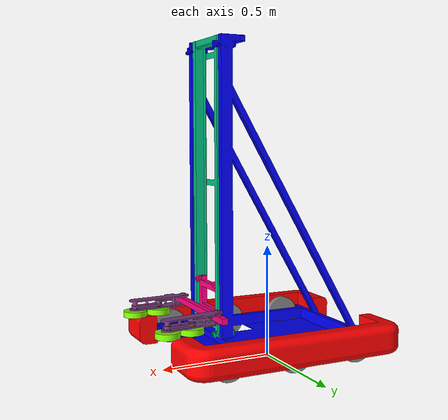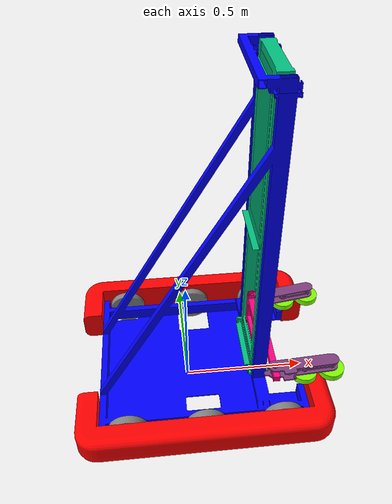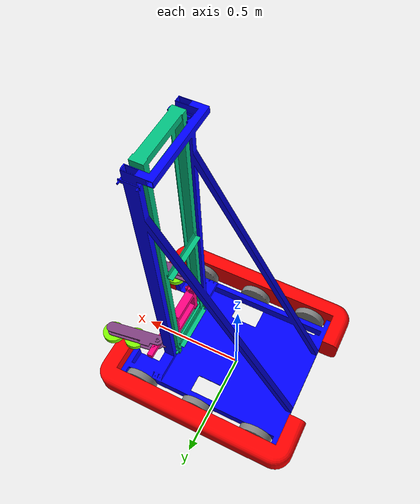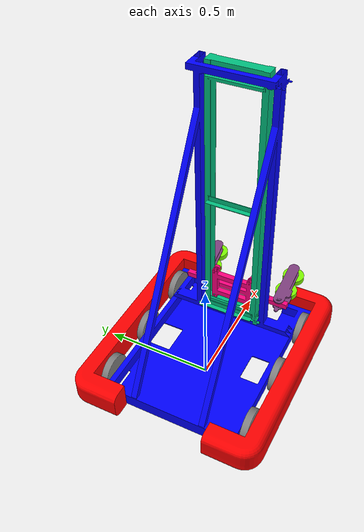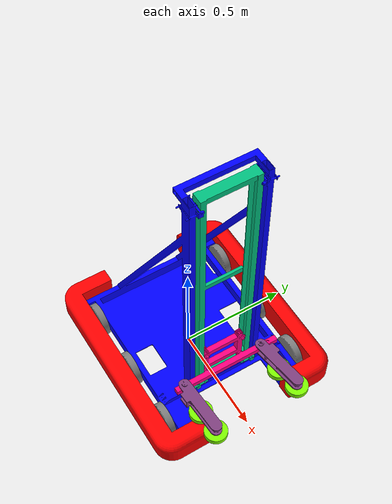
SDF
<?xml version="1.0" encoding="utf-8"?>
<sdf version="1.5">
  <model name="2018Robot">
    <pose>0 0 0.07612 0 0 0</pose>
    <plugin name="clock" filename="libclock.so">
      <topic>/gazebo/frc/time</topic>
    </plugin>
    <link name="Body">
      <gravity>1</gravity>
      <self_collide>0</self_collide>
      <pose>0.0514622547640746 -7.03169526643412E-05 0.00139859677991154 1.571 0 1.571</pose>
      <must_be_base_link>1</must_be_base_link>
      <velocity_decay>
        <linear>0</linear>
        <angular>0</angular>
      </velocity_decay>
      <inertial>
        <mass>35.9506776432133</mass>
        <pose>-0.00759376246486691 0.05 0.0 0 0 0</pose>
        <inertia>
          <ixx>1.40287896</ixx>
          <ixy>0.06862777</ixy>
          <ixz>0.02446668</ixz>
          <iyy>0.18210418</iyy>
          <iyz>0.24909937</iyz>
          <izz>1.34266984</izz>
        </inertia>
      </inertial>
      <collision name="Body_collision">
        <pose>0 0 0 0 0 0</pose>
        <geometry>
          <mesh>
            <scale>1 1 1</scale>
            <uri>model://2018Robot/meshes/Body_col.STL</uri>
          </mesh>
        </geometry>
        <surface>
          <contact>
            <ode />
          </contact>
          <friction>
            <ode>
              <mu>1</mu>
              <mu2>1</mu2>
            </ode>
          </friction>
        </surface>
      </collision>
      <visual name="Body_visual">
        <pose>0 0 0 0 0 0</pose>
        <material>
          <ambient>0 0 1 1</ambient>
          <diffuse>0 0 1 1</diffuse>
        </material>
        <geometry>
          <mesh>
            <scale>1 1 1</scale>
            <uri>model://2018Robot/meshes/Body.STL</uri>
          </mesh>
        </geometry>
      </visual>
    </link>
    <link name="LFWheel">
      <gravity>1</gravity>
      <self_collide>0</self_collide>
      <pose>0.345346896246474 0.328549000000001 0.026924 1.5707963267949 0 1.5707963267949</pose>
      <must_be_base_link>0</must_be_base_link>
      <velocity_decay>
        <linear>0</linear>
        <angular>0</angular>
      </velocity_decay>
      <inertial>
        <mass>0.593273105209116</mass>
        <pose>0 0 0 0 0 0</pose>
        <inertia>
          <ixx>0</ixx>
          <ixy>0</ixy>
          <ixz>0</ixz>
          <iyy>0</iyy>
          <iyz>0</iyz>
          <izz>0</izz>
        </inertia>
      </inertial>
      <collision name="LFWheel_collision">
        <pose>-0.328619316952665 -0.0255254032200884 -0.2938846414824 0 0 0</pose>
        <geometry>
          <mesh>
            <scale>1 1 1</scale>
            <uri>model://2018Robot/meshes/LFWheel_col.STL</uri>
          </mesh>
        </geometry>
        <surface>
          <contact>
            <ode>
              <kp>1000000</kp>
              <kd>10</kd>
            </ode>
          </contact>
          <friction>
            <ode>
              <mu>1</mu>
              <mu2>1</mu2>
            </ode>
          </friction>
        </surface>
      </collision>
      <visual name="LFWheel_visual">
        <pose>-0.328619316952665 -0.0255254032200884 -0.2938846414824 0 0 0</pose>
        <material>
          <ambient>0.501960784313725 0.501960784313725 0.501960784313725 1</ambient>
          <diffuse>0.501960784313725 0.501960784313725 0.501960784313725 1</diffuse>
        </material>
        <geometry>
          <mesh>
            <scale>1 1 1</scale>
            <uri>model://2018Robot/meshes/LFWheel.STL</uri>
          </mesh>
        </geometry>
      </visual>
    </link>
    <joint name="Body-LFWheel" type="revolute">
      <parent>Body</parent>
      <child>LFWheel</child>
      <pose>0 2.77555756156289E-17 -5.55111512312578E-17 0 0 0</pose>
      <axis>
        <xyz>1 0 0</xyz>
        <dynamics>
          <damping>1</damping>
          <friction>1</friction>
        </dynamics>
        <limit>
          <effort>50</effort>
        </limit>
      </axis>
    </joint>
    <link name="LCWheel">
      <gravity>1</gravity>
      <self_collide>0</self_collide>
      <pose>0.0468968962464743 0.328549000000001 0.0220472 1.5707963267949 0 1.5707963267949</pose>
      <must_be_base_link>0</must_be_base_link>
      <velocity_decay>
        <linear>0</linear>
        <angular>0</angular>
      </velocity_decay>
      <inertial>
        <mass>0.593273105209116</mass>
        <pose>0 0 0 0 0 0</pose>
        <inertia>
          <ixx>0</ixx>
          <ixy>0</ixy>
          <ixz>0</ixz>
          <iyy>0</iyy>
          <iyz>0</iyz>
          <izz>0</izz>
        </inertia>
      </inertial>
      <collision name="LCWheel_collision">
        <pose>-0.328619316952665 -0.0206486032200884 0.00456535851760044 0 0 0</pose>
        <geometry>
          <mesh>
            <scale>1 1 1</scale>
            <uri>model://2018Robot/meshes/LCWheel_col.STL</uri>
          </mesh>
        </geometry>
        <surface>
          <contact>
            <ode>
              <kp>1000000</kp>
              <kd>10</kd>
            </ode>
          </contact>
          <friction>
            <ode>
              <mu>1</mu>
              <mu2>1</mu2>
            </ode>
          </friction>
        </surface>
      </collision>
      <visual name="LCWheel_visual">
        <pose>-0.328619316952665 -0.0206486032200884 0.00456535851760044 0 0 0</pose>
        <material>
          <ambient>0.501960784313725 0.501960784313725 0.501960784313725 1</ambient>
          <diffuse>0.501960784313725 0.501960784313725 0.501960784313725 1</diffuse>
        </material>
        <geometry>
          <mesh>
            <scale>1 1 1</scale>
            <uri>model://2018Robot/meshes/LCWheel.STL</uri>
          </mesh>
        </geometry>
      </visual>
    </link>
    <joint name="Body-LCWheel" type="revolute">
      <parent>Body</parent>
      <child>LCWheel</child>
      <pose>0 6.93889390390723E-18 -3.46944695195361E-18 0 0 0</pose>
      <axis>
        <xyz>1 0 0</xyz>
        <dynamics>
          <damping>1</damping>
          <friction>1</friction>
        </dynamics>
        <limit>
          <effort>50</effort>
        </limit>
      </axis>
    </joint>
    <link name="LBWheel">
      <gravity>1</gravity>
      <self_collide>0</self_collide>
      <pose>-0.251553103753526 0.328549000000001 0.0269239999999999 1.5707963267949 0 1.5707963267949</pose>
      <must_be_base_link>0</must_be_base_link>
      <velocity_decay>
        <linear>0</linear>
        <angular>0</angular>
      </velocity_decay>
      <inertial>
        <mass>0.593273105209116</mass>
        <pose>0 0 0 0 0 0</pose>
        <inertia>
          <ixx>0</ixx>
          <ixy>0</ixy>
          <ixz>0</ixz>
          <iyy>0</iyy>
          <iyz>0</iyz>
          <izz>0</izz>
        </inertia>
      </inertial>
      <collision name="LBWheel_collision">
        <pose>-0.328619316952665 -0.0255254032200885 0.3030153585176 0 0 0</pose>
        <geometry>
          <mesh>
            <scale>1 1 1</scale>
            <uri>model://2018Robot/meshes/LBWheel_col.STL</uri>
          </mesh>
        </geometry>
        <surface>
          <contact>
            <ode>
              <kp>1000000</kp>
              <kd>10</kd>
            </ode>
          </contact>
          <friction>
            <ode>
              <mu>1</mu>
              <mu2>1</mu2>
            </ode>
          </friction>
        </surface>
      </collision>
      <visual name="LBWheel_visual">
        <pose>-0.328619316952665 -0.0255254032200885 0.3030153585176 0 0 0</pose>
        <material>
          <ambient>0.501960784313725 0.501960784313725 0.501960784313725 1</ambient>
          <diffuse>0.501960784313725 0.501960784313725 0.501960784313725 1</diffuse>
        </material>
        <geometry>
          <mesh>
            <scale>1 1 1</scale>
            <uri>model://2018Robot/meshes/LBWheel.STL</uri>
          </mesh>
        </geometry>
      </visual>
    </link>
    <joint name="Body-LBWheel" type="revolute">
      <parent>Body</parent>
      <child>LBWheel</child>
      <pose>0 -1.73472347597681E-17 5.55111512312578E-17 0 0 0</pose>
      <axis>
        <xyz>1 0 0</xyz>
        <dynamics>
          <damping>1</damping>
          <friction>1</friction>
        </dynamics>
        <limit>
          <effort>50</effort>
        </limit>
      </axis>
    </joint>
    <link name="RFWheel">
      <gravity>1</gravity>
      <self_collide>0</self_collide>
      <pose>0.347862527162241 -0.328548999999999 0.0280925888899449 1.5707963267949 0 1.5707963267949</pose>
      <must_be_base_link>0</must_be_base_link>
      <velocity_decay>
        <linear>0</linear>
        <angular>0</angular>
      </velocity_decay>
      <inertial>
        <mass>0.593273105209116</mass>
        <pose>0 0 0 0 0 0</pose>
        <inertia>
          <ixx>0</ixx>
          <ixy>0</ixy>
          <ixz>0</ixz>
          <iyy>0</iyy>
          <iyz>0</iyz>
          <izz>0</izz>
        </inertia>
      </inertial>
      <collision name="RFWheel_collision">
        <pose>0.328478683047335 -0.0266939921100333 -0.296400272398166 0 0 0</pose>
        <geometry>
          <mesh>
            <scale>1 1 1</scale>
            <uri>model://2018Robot/meshes/RFWheel_col.STL</uri>
          </mesh>
        </geometry>
        <surface>
          <contact>
            <ode>
              <kp>1000000</kp>
              <kd>10</kd>
            </ode>
          </contact>
          <friction>
            <ode>
              <mu>1</mu>
              <mu2>1</mu2>
            </ode>
          </friction>
        </surface>
      </collision>
      <visual name="RFWheel_visual">
        <pose>0.328478683047335 -0.0266939921100333 -0.296400272398166 0 0 0</pose>
        <material>
          <ambient>0.501960784313725 0.501960784313725 0.501960784313725 1</ambient>
          <diffuse>0.501960784313725 0.501960784313725 0.501960784313725 1</diffuse>
        </material>
        <geometry>
          <mesh>
            <scale>1 1 1</scale>
            <uri>model://2018Robot/meshes/RFWheel.STL</uri>
          </mesh>
        </geometry>
      </visual>
    </link>
    <joint name="Body-RFWheel" type="revolute">
      <parent>Body</parent>
      <child>RFWheel</child>
      <pose>0 -6.93889390390723E-18 0 0 0 0</pose>
      <axis>
        <xyz>1 0 0</xyz>
        <dynamics>
          <damping>1</damping>
          <friction>1</friction>
        </dynamics>
        <limit>
          <effort>50</effort>
        </limit>
      </axis>
    </joint>
    <link name="RCWheel">
      <gravity>1</gravity>
      <self_collide>0</self_collide>
      <pose>0.0494125271622406 -0.328548999999999 0.0232157888899448 1.5707963267949 0 1.5707963267949</pose>
      <must_be_base_link>0</must_be_base_link>
      <velocity_decay>
        <linear>0</linear>
        <angular>0</angular>
      </velocity_decay>
      <inertial>
        <mass>0.593273105209116</mass>
        <pose>0 0 0 0 0 0</pose>
        <inertia>
          <ixx>0</ixx>
          <ixy>0</ixy>
          <ixz>0</ixz>
          <iyy>0</iyy>
          <iyz>0</iyz>
          <izz>0</izz>
        </inertia>
      </inertial>
      <collision name="RCWheel_collision">
        <pose>0.328478683047335 -0.0218171921100333 0.00204972760183393 0 0 0</pose>
        <geometry>
          <mesh>
            <scale>1 1 1</scale>
            <uri>model://2018Robot/meshes/RCWheel_col.STL</uri>
          </mesh>
        </geometry>
        <surface>
          <contact>
            <ode>
              <kp>1000000</kp>
              <kd>10</kd>
            </ode>
          </contact>
          <friction>
            <ode>
              <mu>1</mu>
              <mu2>1</mu2>
            </ode>
          </friction>
        </surface>
      </collision>
      <visual name="RCWheel_visual">
        <pose>0.328478683047335 -0.0218171921100333 0.00204972760183393 0 0 0</pose>
        <material>
          <ambient>0.501960784313725 0.501960784313725 0.501960784313725 1</ambient>
          <diffuse>0.501960784313725 0.501960784313725 0.501960784313725 1</diffuse>
        </material>
        <geometry>
          <mesh>
            <scale>1 1 1</scale>
            <uri>model://2018Robot/meshes/RCWheel.STL</uri>
          </mesh>
        </geometry>
      </visual>
    </link>
    <joint name="Body-RCWheel" type="revolute">
      <parent>Body</parent>
      <child>RCWheel</child>
      <pose>0 6.93889390390723E-18 -3.46944695195361E-18 0 0 0</pose>
      <axis>
        <xyz>1 0 0</xyz>
        <dynamics>
          <damping>1</damping>
          <friction>1</friction>
        </dynamics>
        <limit>
          <effort>50</effort>
        </limit>
      </axis>
    </joint>
    <link name="RBWheel">
      <gravity>1</gravity>
      <self_collide>0</self_collide>
      <pose>-0.249037472837759 -0.328548999999999 0.0280925888899448 1.5707963267949 0 1.5707963267949</pose>
      <must_be_base_link>0</must_be_base_link>
      <velocity_decay>
        <linear>0</linear>
        <angular>0</angular>
      </velocity_decay>
      <inertial>
        <mass>0.593273105209116</mass>
        <pose>0 0 0 0 0 0</pose>
        <inertia>
          <ixx>0</ixx>
          <ixy>0</ixy>
          <ixz>0</ixz>
          <iyy>0</iyy>
          <iyz>0</iyz>
          <izz>0</izz>
        </inertia>
      </inertial>
      <collision name="RBWheel_collision">
        <pose>0.328478683047335 -0.0266939921100333 0.300499727601834 0 0 0</pose>
        <geometry>
          <mesh>
            <scale>1 1 1</scale>
            <uri>model://2018Robot/meshes/RBWheel_col.STL</uri>
          </mesh>
        </geometry>
        <surface>
          <contact>
            <ode>
              <kp>1e7</kp>
              <kd>2</kd>
            </ode>
          </contact>
          <friction>
            <ode>
              <mu>1</mu>
              <mu2>1</mu2>
            </ode>
          </friction>
        </surface>
      </collision>
      <visual name="RBWheel_visual">
        <pose>0.328478683047335 -0.0266939921100333 0.300499727601834 0 0 0</pose>
        <material>
          <ambient>0.501960784313725 0.501960784313725 0.501960784313725 1</ambient>
          <diffuse>0.501960784313725 0.501960784313725 0.501960784313725 1</diffuse>
        </material>
        <geometry>
          <mesh>
            <scale>1 1 1</scale>
            <uri>model://2018Robot/meshes/RBWheel.STL</uri>
          </mesh>
        </geometry>
      </visual>
    </link>
    <joint name="Body-RBWheel" type="revolute">
      <parent>Body</parent>
      <child>RBWheel</child>
      <pose>0 0 -5.55111512312578E-17 0 0 0</pose>
      <axis>
        <xyz>1 0 0</xyz>
        <dynamics>
          <damping>1</damping>
          <friction>1</friction>
        </dynamics>
        <limit>
          <effort>50</effort>
        </limit>
      </axis>
    </joint>
    <link name="Elevator">
      <gravity>1</gravity>
      <self_collide>0</self_collide>
      <pose>0.273084449678101 -0.000136538670951718 0.682521554774598 1.5707963267949 0 1.5707963267949</pose>
      <must_be_base_link>0</must_be_base_link>
      <velocity_decay>
        <linear>0</linear>
        <angular>0</angular>
      </velocity_decay>
      <inertial>
        <mass>1.0105647270352</mass>
        <pose>0 0 0 0 0 0</pose>
        <inertia>
          <ixx>0.312365172579047</ixx>
          <ixy>4.29981822034921E-17</ixy>
          <ixz>4.34846172927141E-07</ixz>
          <iyy>0.0310790228334828</iyy>
          <iyz>5.94465968109575E-05</iyz>
          <izz>0.342860898116179</izz>
        </inertia>
      </inertial>
      <collision name="Elevator_collision">
        <pose>6.62217182873273E-05 -0.681122957994686 -0.221622194914027 0 0 0</pose>
        <geometry>
          <mesh>
            <scale>1 1 1</scale>
            <uri>model://2018Robot/meshes/Elevator_col.STL</uri>
          </mesh>
        </geometry>
        <surface>
          <contact>
            <ode />
          </contact>
          <friction>
            <ode>
              <mu>1</mu>
              <mu2>1</mu2>
            </ode>
          </friction>
        </surface>
      </collision>
      <visual name="Elevator_visual">
        <pose>6.62217182873273E-05 -0.681122957994686 -0.221622194914027 0 0 0</pose>
        <material>
          <ambient>0 0.752941176470588 0.501960784313725 1</ambient>
          <diffuse>0 0.752941176470588 0.501960784313725 1</diffuse>
        </material>
        <geometry>
          <mesh>
            <scale>1 1 1</scale>
            <uri>model://2018Robot/meshes/Elevator.STL</uri>
          </mesh>
        </geometry>
      </visual>
    </link>
    <joint name="Body-Elevator" type="prismatic">
      <parent>Body</parent>
      <child>Elevator</child>
      <pose>0.146685 5.55111512312578E-16 0.0284431309088501 0 0 0</pose>
      <axis>
        <xyz>0 1 0</xyz>
        <dynamics>
          <damping>1</damping>
          <friction>0.5</friction>
        </dynamics>
        <limit>
          <upper>1</upper>
          <lower>0</lower>
          <effort>200</effort>
        </limit>
      </axis>
    </joint>
    <link name="Carriage">
      <gravity>1</gravity>
      <self_collide>0</self_collide>
      <pose>0.298251064263279 -0.000525442663769609 0.196156834417803 1.5707963267949 0 1.5707963267949</pose>
      <must_be_base_link>0</must_be_base_link>
      <velocity_decay>
        <linear>0</linear>
        <angular>0</angular>
      </velocity_decay>
      <inertial>
        <mass>0.756134294882802</mass>
        <pose>0 0 0 0 0 0</pose>
        <inertia>
          <ixx>0.00151360538669035</ixx>
          <ixy>7.90152677191644E-06</ixy>
          <ixz>7.73068924193737E-06</ixz>
          <iyy>0.00224964055846027</iyy>
          <iyz>0.000406864253013999</iyz>
          <izz>0.0029310055946332</izz>
        </inertia>
      </inertial>
      <collision name="Carriage_collision">
        <pose>0.000455125711105213 -0.194758237637891 -0.246788809499204 0 0 0</pose>
        <geometry>
          <mesh>
            <scale>1 1 1</scale>
            <uri>model://2018Robot/meshes/Carriage_col.STL</uri>
          </mesh>
        </geometry>
        <surface>
          <contact>
            <ode />
          </contact>
          <friction>
            <ode>
              <mu>1</mu>
              <mu2>1</mu2>
            </ode>
          </friction>
        </surface>
      </collision>
      <visual name="Carriage_visual">
        <pose>0.000455125711105213 -0.194758237637891 -0.246788809499204 0 0 0</pose>
        <material>
          <ambient>1 0 0.501960784313725 1</ambient>
          <diffuse>1 0 0.501960784313725 1</diffuse>
        </material>
        <geometry>
          <mesh>
            <scale>1 1 1</scale>
            <uri>model://2018Robot/meshes/Carriage.STL</uri>
          </mesh>
        </geometry>
      </visual>
      <sensor name="CarriageCamera" type="camera">
        <visualize>0</visualize>
        <always_on>1</always_on>
        <update_rate>30</update_rate>
        <pose>0.000388903992818958 0.0712680215809203 -0.00942348367632703 4.71238898038469 4.71238898038469 0</pose>
        <camera name="Carriagecamera">
          <horizontal_fov>1.5707963267949</horizontal_fov>
          <image>
            <width>320</width>
            <height>240</height>
          </image>
          <clip>
            <near>0.1</near>
            <far>100</far>
          </clip>
         <save enabled="true">
              <path>/tmp/driver-camera</path>
          </save>
        </camera>
      </sensor>
    </link>
    <joint name="Elevator-Carriage" type="prismatic">
      <parent>Elevator</parent>
      <child>Carriage</child>
      <pose>0.102623903992818 0.0204680529107767 0.0032765163236731 0 0 0</pose>
      <axis>
        <xyz>0 1 0</xyz>
        <dynamics>
          <damping>4</damping>
          <friction>0.5</friction>
        </dynamics>
        <limit>
          <upper>1.0</upper>
          <lower>0</lower>
          <effort>200</effort>
        </limit>
      </axis>
    </joint>

    <link name="Bumpers">
      <gravity>1</gravity>
      <self_collide>0</self_collide>
      <pose>0.0514622547640746 -7.03169526643412E-05 0.00139859677991154 1.571 0 1.571</pose>
      <must_be_base_link>0</must_be_base_link>
      <velocity_decay>
        <linear>0</linear>
        <angular>0</angular>
      </velocity_decay>
      <inertial>
        <mass>0.398486040545588</mass>
        <pose>3.51584763543176E-05 0.04904129851018 -0.00456535851758919 0 0 0</pose>
        <inertia>
          <ixx>0.01</ixx>
          <ixy>1.03639166087484E-14</ixy>
          <ixz>2.06E-06</ixz>
          <iyy>0.05</iyy>
          <iyz>4.06737867734918E-19</iyz>
          <izz>0.05</izz>
        </inertia>
      </inertial>
      <collision name="Bumpers_collision">
        <pose>0 0 0 0 0 0</pose>
        <geometry>
          <mesh>
            <scale>1 1 1</scale>
            <uri>model://2018Robot/meshes/Bumpers_col.STL</uri>
          </mesh>
        </geometry>
        <surface>
          <contact>
            <ode>
              <kp>1e7</kp>
              <kd>2</kd>
            </ode>
          </contact>
          <friction>
            <ode>
              <mu>1</mu>
              <mu2>1</mu2>
            </ode>
          </friction>
        </surface>
      </collision>
      <visual name="Bumpers_visual">
        <pose>0 0 0 0 0 0</pose>
        <material>
          <ambient>1 0 0 1</ambient>
          <diffuse>1 0 0 1</diffuse>
        </material>
        <geometry>
          <mesh>
            <scale>1 1 1</scale>
            <uri>model://2018Robot/meshes/Bumpers.STL</uri>
          </mesh>
        </geometry>
      </visual>
    </link>
    <joint name="Body-Bumpers" type="fixed">
      <parent>Body</parent>
      <child>Bumpers</child>
      <pose>0.146618778281713 0.04904129851018 0.250065325822877 0 0 0</pose>
      <axis>
        <xyz>0 1 0</xyz>
        <dynamics>
          <damping>0</damping>
          <friction>0</friction>
        </dynamics>
        <limit>
          <upper>0.001</upper>
          <lower>0</lower>
          <effort>1</effort>
        </limit>
      </axis>
    </joint>

    <link name="LeftArm">
      <gravity>1</gravity>
      <self_collide>0</self_collide>
      <pose>0.444244044788425 0.193535097652683 0.170457192189038 1.5707963267949 0 1.8707963267949</pose>
      <must_be_base_link>0</must_be_base_link>
      <velocity_decay>
        <linear>0</linear>
        <angular>0</angular>
      </velocity_decay>
      <inertial>
        <mass>0.334657514646386</mass>
        <pose>0 0 0 0 0 0</pose>
        <inertia>
          <ixx>0.00957838063662871</ixx>
          <ixy>4.76821168392472E-06</ixy>
          <ixz>0.00135979945601941</ixz>
          <iyy>0.00894154490020228</iyy>
          <iyz>1.85432303193578E-05</iyz>
          <izz>0.00111931238029883</izz>
        </inertia>
      </inertial>
      <collision name="LeftArm_collision">
        <pose>-0.193605414605347 -0.169058595409126 -0.392781790024351 0 0 0</pose>
        <geometry>
          <mesh>
            <scale>1 1 1</scale>
            <uri>model://2018Robot/meshes/LeftArm_col.STL</uri>
          </mesh>
        </geometry>
        <surface>
          <contact>
            <ode />
          </contact>
          <friction>
            <ode>
              <mu>0</mu>
              <mu2>0</mu2>
            </ode>
          </friction>
        </surface>
      </collision>
      <visual name="LeftArm_visual">
        <pose>-0.193605414605347 -0.169058595409126 -0.392781790024351 0 0 0</pose>
        <material>
          <ambient>0.501960784313725 0.250980392156863 0.501960784313725 1</ambient>
          <diffuse>0.501960784313725 0.250980392156863 0.501960784313725 1</diffuse>
        </material>
        <geometry>
          <mesh>
            <scale>1 1 1</scale>
            <uri>model://2018Robot/meshes/LeftArm.STL</uri>
          </mesh>
        </geometry>
      </visual>
    </link>
    <joint name="Carriage-LeftArm" type="revolute">
      <parent>Carriage</parent>
      <child>LeftArm</child>
      <pose>0.0162489078418779 -3.33066907387547E-16 -0.119703964201474 0 6.93889390390727E-18 1.8707963267949</pose>
      <axis>
        <xyz>1 2.15105711021124E-16 0</xyz>
        <dynamics>
          <damping>0</damping>
          <friction>0</friction>
        </dynamics>
        <limit>
          <upper>0.25</upper>
          <lower>-0.15</lower>
          <effort>100</effort>
        </limit>
      </axis>
    </joint>
    <link name="RightArm">
      <gravity>1</gravity>
      <self_collide>0</self_collide>
      <pose>0.442365722232764 -0.207334682561951 0.171127528598477 1.5707963267949 0 1.5707963267949</pose>
      <must_be_base_link>0</must_be_base_link>
      <velocity_decay>
        <linear>0</linear>
        <angular>0</angular>
      </velocity_decay>
      <inertial>
        <mass>0.349562793971358</mass>
        <pose>0 0 0 0 0 0</pose>
        <inertia>
          <ixx>0.00957838063662871</ixx>
          <ixy>4.76821168392472E-06</ixy>
          <ixz>0.00135979945601941</ixz>
          <iyy>0.00894154490020228</iyy>
          <iyz>1.85432303193578E-05</iyz>
          <izz>0.00111931238029883</izz>
        </inertia>
      </inertial>
      <collision name="RightArm_collision">
        <pose>0.207264365609286 -0.169728931818565 -0.39090346746869 0 0 0</pose>
        <geometry>
          <mesh>
            <scale>1 1 1</scale>
            <uri>model://2018Robot/meshes/RightArm_col.STL</uri>
          </mesh>
        </geometry>
        <surface>
          <contact>
            <ode />
          </contact>
          <friction>
            <ode>
              <mu>0</mu>
              <mu2>0</mu2>
            </ode>
          </friction>
        </surface>
      </collision>
      <visual name="RightArm_visual">
        <pose>0.207264365609286 -0.169728931818565 -0.39090346746869 0 0 0</pose>
        <material>
          <ambient>0.501960784313725 0.250980392156863 0.501960784313725 1</ambient>
          <diffuse>0.501960784313725 0.250980392156863 0.501960784313725 1</diffuse>
        </material>
        <geometry>
          <mesh>
            <scale>1 1 1</scale>
            <uri>model://2018Robot/meshes/RightArm.STL</uri>
          </mesh>
        </geometry>
      </visual>
    </link>
    <joint name="Carriage-RightArm" type="revolute">
      <parent>Carriage</parent>
      <child>RightArm</child>
      <pose>-0.0045213119434887 -2.77555756156289E-17 -0.117825641645813 0 6.28318530717959 4.71238898038469</pose>
      <axis>
        <xyz>1 2.15105711021124E-16 6.93889390390727E-18</xyz>
        <dynamics>
          <damping>0</damping>
          <friction>0</friction>
        </dynamics>
        <limit>
          <upper>0.3</upper>
          <lower>-0.1</lower>
          <effort>100</effort>
        </limit>
      </axis>
    </joint>
    <link name="L1Wheel">
      <gravity>1</gravity>
      <self_collide>0</self_collide>
      <pose>0.443715398660799 0.191782788533125 0.134389049247626 1.5707963267949 0 1.5707963267949</pose>
      <must_be_base_link>0</must_be_base_link>
      <velocity_decay>
        <linear>0</linear>
        <angular>0</angular>
      </velocity_decay>
      <inertial>
        <mass>0.205925919505223</mass>
        <pose>0 0 0 0 0 0</pose>
        <inertia>
          <ixx>0.01</ixx>
          <ixy>0</ixy>
          <ixz>0</ixz>
          <iyy>0.01</iyy>
          <iyz>0</iyz>
          <izz>0.01</izz>
        </inertia>
      </inertial>
      <collision name="L1Wheel_collision">
        <pose>-0.19185310548579 -0.132990452467714 -0.392253143896725 0 0 0</pose>
        <geometry>
          <mesh>
            <scale>1 1 1</scale>
            <uri>model://2018Robot/meshes/L1Wheel_col.STL</uri>
          </mesh>
        </geometry>
        <surface>
          <contact>
            <ode>
              <kp>200000</kp>
              <kd>10</kd>
            </ode>
          </contact>
          <friction>
            <ode>
              <mu>2</mu>
            </ode>
          </friction>
        </surface>
      </collision>
      <visual name="L1Wheel_visual">
        <pose>-0.19185310548579 -0.132990452467714 -0.392253143896725 0 0 0</pose>
        <material>
          <ambient>0.501960784313725 1 0 1</ambient>
          <diffuse>0.501960784313725 1 0 1</diffuse>
        </material>
        <geometry>
          <mesh>
            <scale>1 1 1</scale>
            <uri>model://2018Robot/meshes/L1Wheel.STL</uri>
          </mesh>
        </geometry>
      </visual>
    </link>
    <joint name="LeftArm-L1Wheel" type="revolute">
      <parent>LeftArm</parent>
      <child>L1Wheel</child>
      <pose>0.000233167995690509 -8.32667268468867E-17 3.49863718909771E-05 0 6.93889390390727E-18 1.5707963267949</pose>
      <axis>
        <xyz>1 0 0</xyz>
        <dynamics>
          <damping>1</damping>
          <friction>1</friction>
        </dynamics>
        <limit>
          <effort>100</effort>
        </limit>
      </axis>
    </joint>

    <link name="L2Wheel">
      <gravity>1</gravity>
      <self_collide>0</self_collide>
      <pose>0.552488932377014 0.21 0.134389049247626 1.5707963267949 0 1.8107963267949</pose>
      <must_be_base_link>0</must_be_base_link>
      <velocity_decay>
        <linear>0</linear>
        <angular>0</angular>
      </velocity_decay>
      <inertial>
        <mass>0.205925919505223</mass>
        <pose>0 0 0 0 0 0</pose>
        <inertia>
          <ixx>0.01</ixx>
          <ixy>0</ixy>
          <ixz>0</ixz>
          <iyy>0.01</iyy>
          <iyz>0</iyz>
          <izz>0.01</izz>
        </inertia>
      </inertial>
      <collision name="L2Wheel_collision">
        <pose>-0.175423059300599 -0.132990452467714 -0.50102667761294 0 0 0</pose>
        <geometry>
          <mesh>
            <scale>1 1 1</scale>
            <uri>model://2018Robot/meshes/L2Wheel_col.STL</uri>
          </mesh>
        </geometry>
        <surface>
          <contact>
            <ode>
              <kp>200000</kp>
              <kd>10</kd>
            </ode>
          </contact>
          <friction>
            <ode>
              <mu>2</mu>
            </ode>
          </friction>
        </surface>
      </collision>
      <visual name="L2Wheel_visual">
        <pose>-0.175423059300599 -0.132990452467714 -0.50102667761294 0 0 0</pose>
        <material>
          <ambient>0.501960784313725 1 0 1</ambient>
          <diffuse>0.501960784313725 1 0 1</diffuse>
        </material>
        <geometry>
          <mesh>
            <scale>1 1 1</scale>
            <uri>model://2018Robot/meshes/L2Wheel.STL</uri>
          </mesh>
        </geometry>
      </visual>
    </link>
    <joint name="LeftArm-L2Wheel" type="revolute">
      <parent>LeftArm</parent>
      <child>L2Wheel</child>
      <pose>0.000445984770599261 -1.11022302462516E-16 6.69190855129287E-05 0 6.28318530717959 4.71238898038469</pose>
      <axis>
        <xyz>-1 0 0</xyz>
        <dynamics>
          <damping>1</damping>
          <friction>1</friction>
        </dynamics>
        <limit>
          <effort>100</effort>
        </limit>
      </axis>
    </joint>

    <link name="R1Wheel">
      <gravity>1</gravity>
      <self_collide>0</self_collide>
      <pose>0.444895673779065 -0.205427041443516 0.134389049247626 1.5707963267949 0 1.5707963267949</pose>
      <must_be_base_link>0</must_be_base_link>
      <velocity_decay>
        <linear>0</linear>
        <angular>0</angular>
      </velocity_decay>
      <inertial>
        <mass>0.205925919505223</mass>
        <pose>0 0 0 0 0 0</pose>
        <inertia>
          <ixx>0.01</ixx>
          <ixy>0</ixy>
          <ixz>0</ixz>
          <iyy>0.01</iyy>
          <iyz>0</iyz>
          <izz>0.01</izz>
        </inertia>
      </inertial>
      <collision name="R1Wheel_collision">
        <pose>0.205356724490851 -0.132990452467714 -0.39343341901499 0 0 0</pose>
        <geometry>
          <mesh>
            <scale>1 1 1</scale>
            <uri>model://2018Robot/meshes/R1Wheel_col.STL</uri>
          </mesh>
        </geometry>
        <surface>
          <contact>
            <ode>
              <kp>200000</kp>
              <kd>10</kd>
            </ode>
          </contact>
          <friction>
            <ode>
              <mu>2</mu>
            </ode>
          </friction>
        </surface>
      </collision>
      <visual name="R1Wheel_visual">
        <pose>0.205356724490851 -0.132990452467714 -0.39343341901499 0 0 0</pose>
        <material>
          <ambient>0.501960784313725 1 0 1</ambient>
          <diffuse>0.501960784313725 1 0 1</diffuse>
        </material>
        <geometry>
          <mesh>
            <scale>1 1 1</scale>
            <uri>model://2018Robot/meshes/R1Wheel.STL</uri>
          </mesh>
        </geometry>
      </visual>
    </link>
    <joint name="RightArm-R1Wheel" type="revolute">
      <parent>RightArm</parent>
      <child>R1Wheel</child>
      <pose>0.000235430132699804 -1.11022302462516E-16 -1.2806757985373E-05 0 6.28318530717959 4.71238898038469</pose>
      <axis>
        <xyz>1 0 0</xyz>
        <dynamics>
          <damping>1</damping>
          <friction>1</friction>
        </dynamics>
        <limit>
          <effort>100</effort>
        </limit>
      </axis>
    </joint>

    <link name="R2Wheel">
      <gravity>1</gravity>
      <self_collide>0</self_collide>
      <pose>0.554746466590912 -0.199559216176137 0.134389049247626 1.5707963267949 0 1.5707963267949</pose>
      <must_be_base_link>0</must_be_base_link>
      <velocity_decay>
        <linear>0</linear>
        <angular>0</angular>
      </velocity_decay>
      <inertial>
        <mass>0.205925919505223</mass>
        <pose>0 0 0 0 0 0</pose>
        <inertia>
          <ixx>0.01</ixx>
          <ixy>0</ixy>
          <ixz>0</ixz>
          <iyy>0.01</iyy>
          <iyz>0</iyz>
          <izz>0.01</izz>
        </inertia>
      </inertial>
      <collision name="R2Wheel_collision">
        <pose>0.199488899223472 -0.132990452467714 -0.503284211826838 0 0 0</pose>
        <geometry>
          <mesh>
            <scale>1 1 1</scale>
            <uri>model://2018Robot/meshes/R2Wheel_col.STL</uri>
          </mesh>
        </geometry>
        <surface>
          <contact>
            <ode>
              <kp>200000</kp>
              <kd>10</kd>
            </ode>
          </contact>
          <friction>
            <ode>
              <mu>2</mu>
            </ode>
          </friction>
        </surface>
      </collision>
      <visual name="R2Wheel_visual">
        <pose>0.199488899223472 -0.132990452467714 -0.503284211826838 0 0 0</pose>
        <material>
          <ambient>0.501960784313725 1 0 1</ambient>
          <diffuse>0.501960784313725 1 0 1</diffuse>
        </material>
        <geometry>
          <mesh>
            <scale>1 1 1</scale>
            <uri>model://2018Robot/meshes/R2Wheel.STL</uri>
          </mesh>
        </geometry>
      </visual>
    </link>
    <joint name="RightArm-R2Wheel" type="revolute">
      <parent>RightArm</parent>
      <child>R2Wheel</child>
      <pose>0.000450311602212539 -1.11022302462516E-16 -2.44957246499089E-05 0 6.93889390390727E-18 1.5707963267949</pose>
      <axis>
        <xyz>-1 2.15105711021124E-16 0</xyz>
        <dynamics>
          <damping>1</damping>
          <friction>1</friction>
        </dynamics>
        <limit>
          <effort>100</effort>
        </limit>
      </axis>
    </joint>
    <plugin name="Body_gyro" filename="libgyro.so">
      <link>Body</link>
      <topic>/gazebo/frc/simulator/analog/3</topic>
      <units>degrees</units>
      <axis>yaw</axis>
    </plugin>
    <plugin name="Body-LFWheel_motor" filename="libdc_motor.so">
      <joint>Body-LFWheel</joint>
      <topic>/gazebo/frc/simulator/pwm/2</topic>
      <multiplier>30</multiplier>
    </plugin>
    <plugin name="Body-LCWheel_motor" filename="libdc_motor.so">
      <joint>Body-LCWheel</joint>
      <topic>/gazebo/frc/simulator/pwm/2</topic>
      <multiplier>30</multiplier>
    </plugin>
    <plugin name="Body-LCWheel_encoder" filename="libencoder.so">
      <joint>Body-LCWheel</joint>
      <topic>/gazebo/frc/simulator/dio/3/4</topic>
      <units>degrees</units>
    </plugin>
    <plugin name="Body-LBWheel_motor" filename="libdc_motor.so">
      <joint>Body-LBWheel</joint>
      <topic>/gazebo/frc/simulator/pwm/2</topic>
      <multiplier>30</multiplier>
    </plugin>
    <plugin name="Body-RFWheel_motor" filename="libdc_motor.so">
      <joint>Body-RFWheel</joint>
      <topic>/gazebo/frc/simulator/pwm/4</topic>
      <multiplier>30</multiplier>
    </plugin>
    <plugin name="Body-RCWheel_motor" filename="libdc_motor.so">
      <joint>Body-RCWheel</joint>
      <topic>/gazebo/frc/simulator/pwm/4</topic>
      <multiplier>30</multiplier>
    </plugin>
    <plugin name="Body-RCWheel_encoder" filename="libencoder.so">
      <joint>Body-RCWheel</joint>
      <topic>/gazebo/frc/simulator/dio/7/8</topic>
      <units>degrees</units>
    </plugin>
    <plugin name="Body-RBWheel_motor" filename="libdc_motor.so">
      <joint>Body-RBWheel</joint>
      <topic>/gazebo/frc/simulator/pwm/4</topic>
      <multiplier>30</multiplier>
    </plugin>
    <plugin name="Body-Elevator_motor" filename="libdc_motor.so">
      <joint>Body-Elevator</joint>
      <topic>/gazebo/frc/simulator/pwm/7</topic>
      <multiplier>80</multiplier>
    </plugin>
    <plugin name="Body-Elevator_encoder" filename="libencoder.so">
      <joint>Body-Elevator</joint>
      <topic>/gazebo/frc/simulator/dio/13/14</topic>
    </plugin>
    <plugin name="Elevator-Carriage_motor" filename="libdc_motor.so">
      <joint>Elevator-Carriage</joint>
      <topic>/gazebo/frc/simulator/pwm/8</topic>
      <multiplier>50</multiplier>
    </plugin>
    <plugin name="Body-Carriage_encoder" filename="libencoder.so">
      <joint>Elevator-Carriage</joint>
      <topic>/gazebo/frc/simulator/dio/15/16</topic>
    </plugin>

    <plugin name="Carriage-LeftArm_Piston" filename="libpneumatic_piston.so">
       <joint>Carriage-LeftArm</joint>
      <topic>/gazebo/frc/simulator/pneumatic/1/1</topic>
       <direction>forward</direction>
       <forward-force>10</forward-force>
       <reverse-force>10</reverse-force>
    </plugin>
    <plugin name="Carriage-RightArm_Piston" filename="libpneumatic_piston.so">
       <joint>Carriage-RightArm</joint>
       <topic>/gazebo/frc/simulator/pneumatic/1/1</topic>
       <direction>reverse</direction>
       <forward-force>10</forward-force>
       <reverse-force>10</reverse-force>
    </plugin>

    <plugin name="LeftArm-L1Wheel_motor" filename="libdc_motor.so">
      <joint>LeftArm-L1Wheel</joint>
      <topic>/gazebo/frc/simulator/pwm/5</topic>
      <multiplier>50</multiplier>
    </plugin>
    <plugin name="LeftArm-L2Wheel_motor" filename="libdc_motor.so">
      <joint>LeftArm-L2Wheel</joint>
      <topic>/gazebo/frc/simulator/pwm/5</topic>
      <multiplier>50</multiplier>
    </plugin>
    <plugin name="RightArm-R1Wheel_motor" filename="libdc_motor.so">
      <joint>RightArm-R1Wheel</joint>
      <topic>/gazebo/frc/simulator/pwm/5</topic>
      <multiplier>50</multiplier>
    </plugin>
    <plugin name="RightArm-R2Wheel_motor" filename="libdc_motor.so">
      <joint>RightArm-R2Wheel</joint>
      <topic>/gazebo/frc/simulator/pwm/5</topic>
      <multiplier>50</multiplier>
    </plugin>
  </model>

</sdf>
